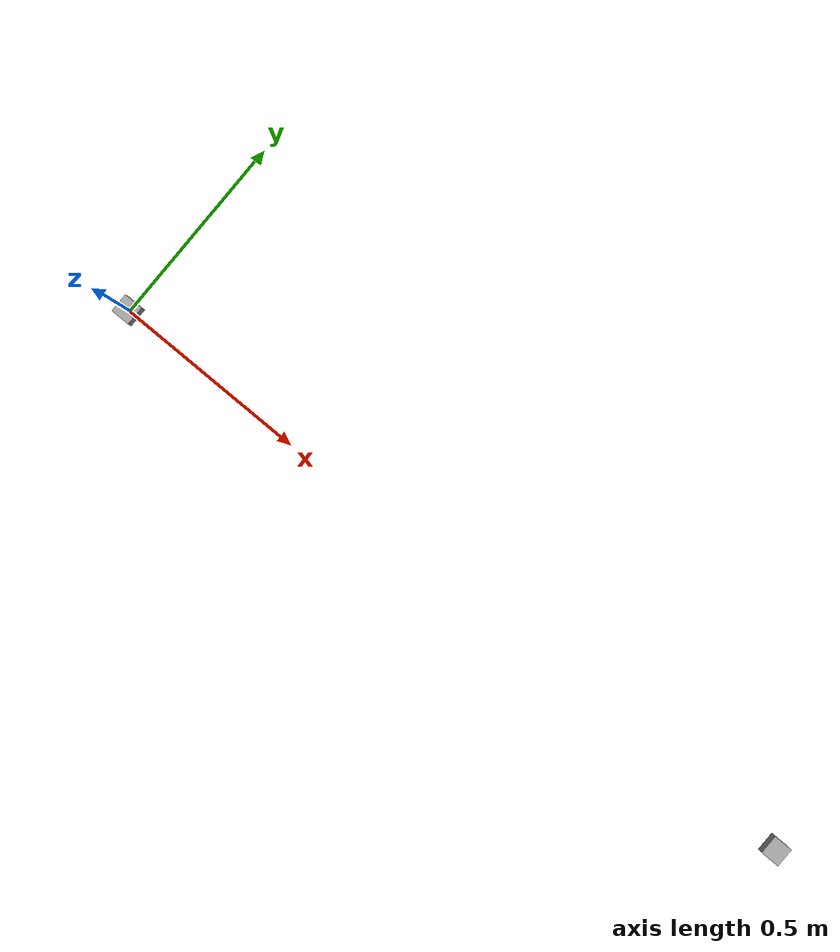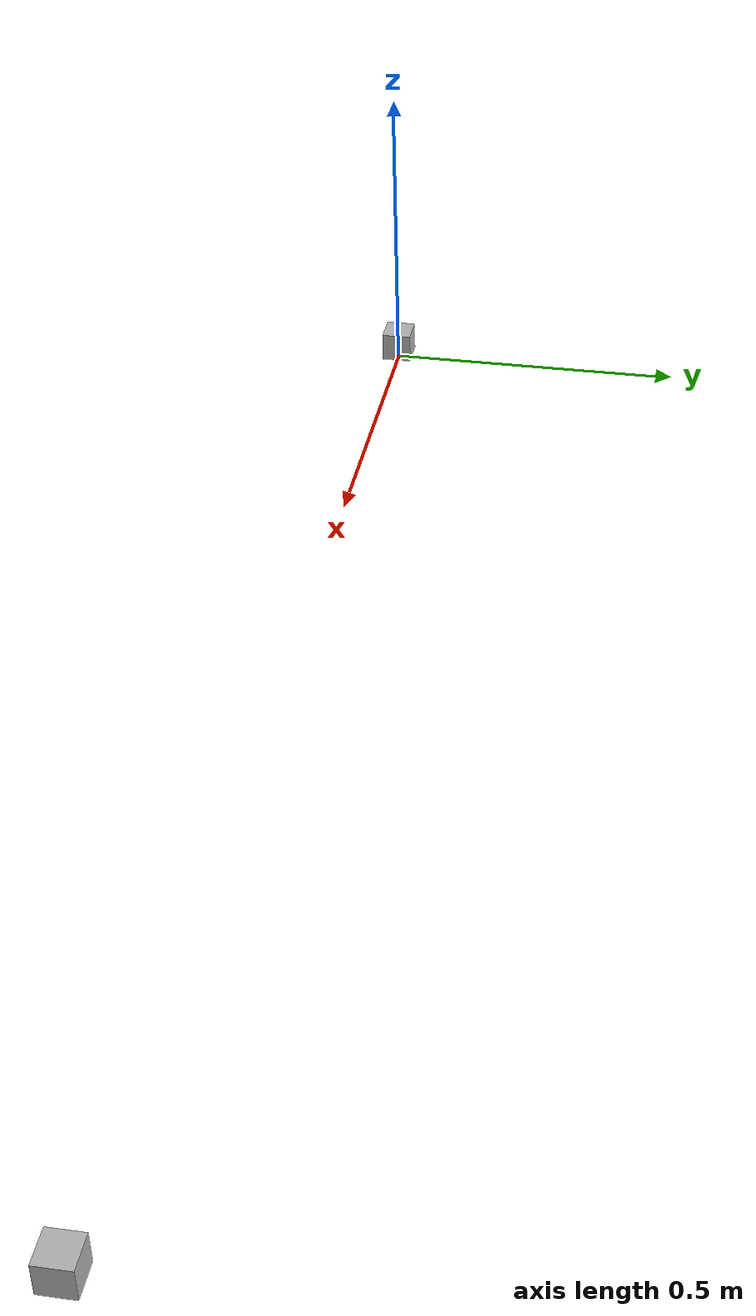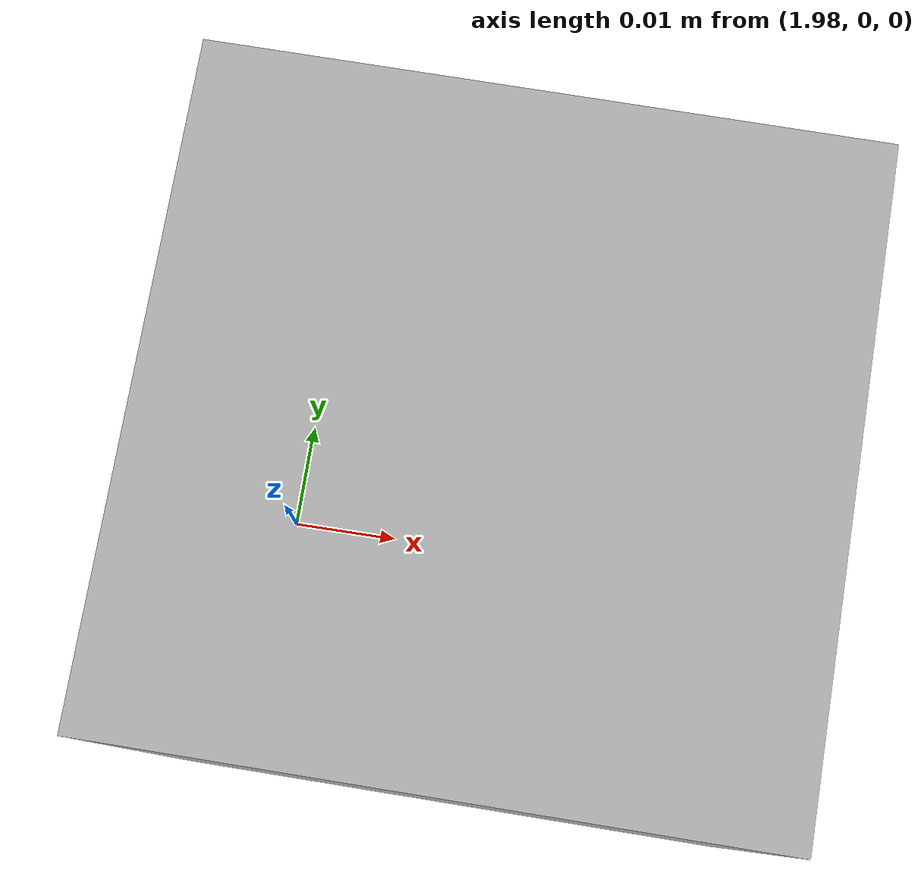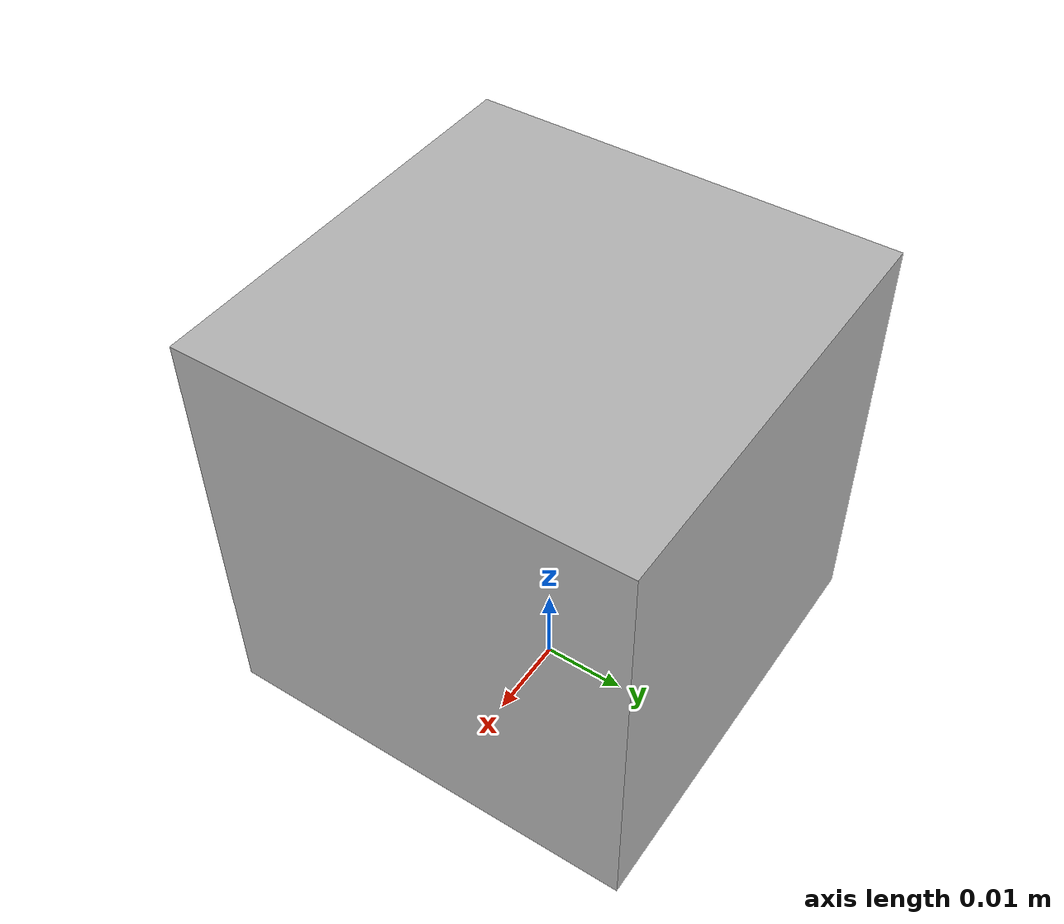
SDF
<?xml version="1.0" ?>
<sdf version="1.10">
    <world name="empty_world">
        <physics name="1ms" type="ignored">
            <max_step_size>0.005</max_step_size>
            <real_time_factor>1.02</real_time_factor>
        </physics>
        <plugin
            filename="gz-sim-physics-system"
            name="gz::sim::systems::Physics">
        </plugin>
        <plugin
            filename="gz-sim-user-commands-system"
            name="gz::sim::systems::UserCommands">
        </plugin>
        <plugin
            filename="gz-sim-scene-broadcaster-system"
            name="gz::sim::systems::SceneBroadcaster">
        </plugin>

        <light type="directional" name="sun">
            <cast_shadows>true</cast_shadows>
            <pose>0 0 10 0 0 0</pose>
            <diffuse>0.8 0.8 0.8 1</diffuse>
            <specular>0.2 0.2 0.2 1</specular>
            <attenuation>
                <range>1000</range>
                <constant>0.9</constant>
                <linear>0.01</linear>
                <quadratic>0.001</quadratic>
            </attenuation>
            <direction>-0.5 0.1 -0.9</direction>
        </light>

        <!-- A puzzlebot robot -->
        <include>
            <uri>/home/reto/puzzlebot_ros/install/puzzlebot_ros/share/puzzlebot_ros/gazebo/puzzlebot_camera/model.sdf</uri>
            <pose>0 0 0 0 0 0</pose>
        </include>

        <include>
            <uri>/home/reto/puzzlebot_ros/install/puzzlebot_ros/share/puzzlebot_ros/gazebo/world_wall/model.sdf</uri>
            <pose>2 0 0 0 0 0</pose>
        </include>

    </world>
</sdf>

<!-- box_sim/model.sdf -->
<sdf version='1.4'>
    <model name='box_sim'>
    <static>true</static>

        <link name='link0'>
            <pose>0 0 0.03 0 0 0</pose>

            <visual name='visual'>
                <geometry>
                    <mesh>
                        <uri>./meshes/box_brick.dae</uri>
                    </mesh>
                </geometry>
            </visual>

            <collision name='collision'>
                <pose>0 0 0 0 0 0</pose>
                <geometry>
                    <box>
                        <size>0.05 0.05 0.05</size>
                    </box>
                </geometry>
            </collision>

        </link>

    </model>

</sdf>
